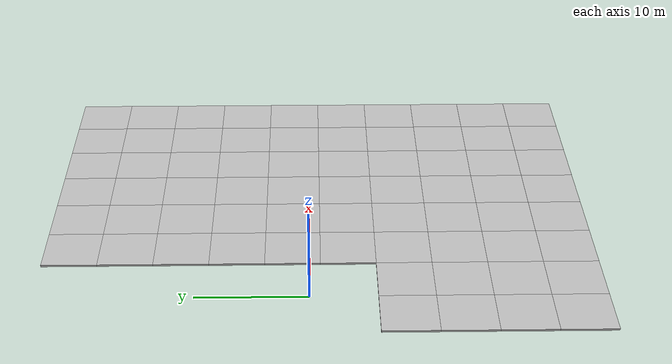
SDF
<sdf version="1.6">
 <world name="default">
  <model name="mud_box_clone_1">
   <static>1</static>
   <link name="link">
    <collision name="collision"><geometry><box><size>8 10 0.2</size></box></geometry></collision>
    <visual name="visual_1">
     <pose>-2 2.5 0 0 -0 0</pose>
     <cast_shadows>0</cast_shadows>
     <geometry><box><size>4 5 0.2</size></box></geometry>
     <material>
      <script>
       <uri>model://mud_box/materials/scripts</uri>
       <uri>model://mud_box/materials/textures</uri>
       <name>vrc/mud</name>
      </script>
     </material>
    </visual>
    <visual name="visual_2">
     <pose>2 2.5 0 0 -0 0</pose>
     <cast_shadows>0</cast_shadows>
     <geometry><box><size>4 5 0.2</size></box></geometry>
     <material>
      <script>
       <uri>model://mud_box/materials/scripts</uri>
       <uri>model://mud_box/materials/textures</uri>
       <name>vrc/mud</name>
      </script>
     </material>
    </visual>
    <visual name="visual_3">
     <pose>2 -2.5 0 0 -0 0</pose>
     <cast_shadows>0</cast_shadows>
     <geometry><box><size>4 5 0.2</size></box></geometry>
     <material>
      <script>
       <uri>model://mud_box/materials/scripts</uri>
       <uri>model://mud_box/materials/textures</uri>
       <name>vrc/mud</name>
      </script>
     </material>
    </visual>
    <visual name="visual_4">
     <pose>-2 -2.5 0 0 -0 0</pose>
     <cast_shadows>0</cast_shadows>
     <geometry><box><size>4 5 0.2</size></box></geometry>
     <material>
      <script>
       <uri>model://mud_box/materials/scripts</uri>
       <uri>model://mud_box/materials/textures</uri>
       <name>vrc/mud</name>
      </script>
     </material>
    </visual>
   </link>
   <pose>8 19 0 0 -0 0</pose>
  </model>
  <model name="mud_box_clone_2">
   <static>1</static>
   <link name="link">
    <collision name="collision"><geometry><box><size>8 10 0.2</size></box></geometry></collision>
    <visual name="visual_1">
     <pose>-2 2.5 0 0 -0 0</pose>
     <cast_shadows>0</cast_shadows>
     <geometry><box><size>4 5 0.2</size></box></geometry>
     <material>
      <script>
       <uri>model://mud_box/materials/scripts</uri>
       <uri>model://mud_box/materials/textures</uri>
       <name>vrc/mud</name>
      </script>
     </material>
    </visual>
    <visual name="visual_2">
     <pose>2 2.5 0 0 -0 0</pose>
     <cast_shadows>0</cast_shadows>
     <geometry><box><size>4 5 0.2</size></box></geometry>
     <material>
      <script>
       <uri>model://mud_box/materials/scripts</uri>
       <uri>model://mud_box/materials/textures</uri>
       <name>vrc/mud</name>
      </script>
     </material>
    </visual>
    <visual name="visual_3">
     <pose>2 -2.5 0 0 -0 0</pose>
     <cast_shadows>0</cast_shadows>
     <geometry><box><size>4 5 0.2</size></box></geometry>
     <material>
      <script>
       <uri>model://mud_box/materials/scripts</uri>
       <uri>model://mud_box/materials/textures</uri>
       <name>vrc/mud</name>
      </script>
     </material>
    </visual>
    <visual name="visual_4">
     <pose>-2 -2.5 0 0 -0 0</pose>
     <cast_shadows>0</cast_shadows>
     <geometry><box><size>4 5 0.2</size></box></geometry>
     <material>
      <script>
       <uri>model://mud_box/materials/scripts</uri>
       <uri>model://mud_box/materials/textures</uri>
       <name>vrc/mud</name>
      </script>
     </material>
    </visual>
   </link>
   <pose>16 19 0 0 -0 0</pose>
  </model>
  <model name="mud_box_clone_3">
   <static>1</static>
   <link name="link">
    <collision name="collision"><geometry><box><size>8 10 0.2</size></box></geometry></collision>
    <visual name="visual_1">
     <pose>-2 2.5 0 0 -0 0</pose>
     <cast_shadows>0</cast_shadows>
     <geometry><box><size>4 5 0.2</size></box></geometry>
     <material>
      <script>
       <uri>model://mud_box/materials/scripts</uri>
       <uri>model://mud_box/materials/textures</uri>
       <name>vrc/mud</name>
      </script>
     </material>
    </visual>
    <visual name="visual_2">
     <pose>2 2.5 0 0 -0 0</pose>
     <cast_shadows>0</cast_shadows>
     <geometry><box><size>4 5 0.2</size></box></geometry>
     <material>
      <script>
       <uri>model://mud_box/materials/scripts</uri>
       <uri>model://mud_box/materials/textures</uri>
       <name>vrc/mud</name>
      </script>
     </material>
    </visual>
    <visual name="visual_3">
     <pose>2 -2.5 0 0 -0 0</pose>
     <cast_shadows>0</cast_shadows>
     <geometry><box><size>4 5 0.2</size></box></geometry>
     <material>
      <script>
       <uri>model://mud_box/materials/scripts</uri>
       <uri>model://mud_box/materials/textures</uri>
       <name>vrc/mud</name>
      </script>
     </material>
    </visual>
    <visual name="visual_4">
     <pose>-2 -2.5 0 0 -0 0</pose>
     <cast_shadows>0</cast_shadows>
     <geometry><box><size>4 5 0.2</size></box></geometry>
     <material>
      <script>
       <uri>model://mud_box/materials/scripts</uri>
       <uri>model://mud_box/materials/textures</uri>
       <name>vrc/mud</name>
      </script>
     </material>
    </visual>
   </link>
   <pose>24 19 0 0 -0 0</pose>
  </model>
  <model name="mud_box_clone_3_clone">
   <static>1</static>
   <link name="link">
    <collision name="collision"><geometry><box><size>8 10 0.2</size></box></geometry></collision>
    <visual name="visual_1">
     <pose>-2 2.5 0 0 -0 0</pose>
     <cast_shadows>0</cast_shadows>
     <geometry><box><size>4 5 0.2</size></box></geometry>
     <material>
      <script>
       <uri>model://mud_box/materials/scripts</uri>
       <uri>model://mud_box/materials/textures</uri>
       <name>vrc/mud</name>
      </script>
     </material>
    </visual>
    <visual name="visual_2">
     <pose>2 2.5 0 0 -0 0</pose>
     <cast_shadows>0</cast_shadows>
     <geometry><box><size>4 5 0.2</size></box></geometry>
     <material>
      <script>
       <uri>model://mud_box/materials/scripts</uri>
       <uri>model://mud_box/materials/textures</uri>
       <name>vrc/mud</name>
      </script>
     </material>
    </visual>
    <visual name="visual_3">
     <pose>2 -2.5 0 0 -0 0</pose>
     <cast_shadows>0</cast_shadows>
     <geometry><box><size>4 5 0.2</size></box></geometry>
     <material>
      <script>
       <uri>model://mud_box/materials/scripts</uri>
       <uri>model://mud_box/materials/textures</uri>
       <name>vrc/mud</name>
      </script>
     </material>
    </visual>
    <visual name="visual_4">
     <pose>-2 -2.5 0 0 -0 0</pose>
     <cast_shadows>0</cast_shadows>
     <geometry><box><size>4 5 0.2</size></box></geometry>
     <material>
      <script>
       <uri>model://mud_box/materials/scripts</uri>
       <uri>model://mud_box/materials/textures</uri>
       <name>vrc/mud</name>
      </script>
     </material>
    </visual>
   </link>
   <pose>24 9 0 0 -0 0</pose>
  </model>
  <model name="mud_box_clone_3_clone_0">
   <static>1</static>
   <link name="link">
    <collision name="collision"><geometry><box><size>8 10 0.2</size></box></geometry></collision>
    <visual name="visual_1">
     <pose>-2 2.5 0 0 -0 0</pose>
     <cast_shadows>0</cast_shadows>
     <geometry><box><size>4 5 0.2</size></box></geometry>
     <material>
      <script>
       <uri>model://mud_box/materials/scripts</uri>
       <uri>model://mud_box/materials/textures</uri>
       <name>vrc/mud</name>
      </script>
     </material>
    </visual>
    <visual name="visual_2">
     <pose>2 2.5 0 0 -0 0</pose>
     <cast_shadows>0</cast_shadows>
     <geometry><box><size>4 5 0.2</size></box></geometry>
     <material>
      <script>
       <uri>model://mud_box/materials/scripts</uri>
       <uri>model://mud_box/materials/textures</uri>
       <name>vrc/mud</name>
      </script>
     </material>
    </visual>
    <visual name="visual_3">
     <pose>2 -2.5 0 0 -0 0</pose>
     <cast_shadows>0</cast_shadows>
     <geometry><box><size>4 5 0.2</size></box></geometry>
     <material>
      <script>
       <uri>model://mud_box/materials/scripts</uri>
       <uri>model://mud_box/materials/textures</uri>
       <name>vrc/mud</name>
      </script>
     </material>
    </visual>
    <visual name="visual_4">
     <pose>-2 -2.5 0 0 -0 0</pose>
     <cast_shadows>0</cast_shadows>
     <geometry><box><size>4 5 0.2</size></box></geometry>
     <material>
      <script>
       <uri>model://mud_box/materials/scripts</uri>
       <uri>model://mud_box/materials/textures</uri>
       <name>vrc/mud</name>
      </script>
     </material>
    </visual>
   </link>
   <pose>16 9 0 0 -0 0</pose>
  </model>
  <model name="mud_box_clone_3_clone_1">
   <static>1</static>
   <link name="link">
    <collision name="collision"><geometry><box><size>8 10 0.2</size></box></geometry></collision>
    <visual name="visual_1">
     <pose>-2 2.5 0 0 -0 0</pose>
     <cast_shadows>0</cast_shadows>
     <geometry><box><size>4 5 0.2</size></box></geometry>
     <material>
      <script>
       <uri>model://mud_box/materials/scripts</uri>
       <uri>model://mud_box/materials/textures</uri>
       <name>vrc/mud</name>
      </script>
     </material>
    </visual>
    <visual name="visual_2">
     <pose>2 2.5 0 0 -0 0</pose>
     <cast_shadows>0</cast_shadows>
     <geometry><box><size>4 5 0.2</size></box></geometry>
     <material>
      <script>
       <uri>model://mud_box/materials/scripts</uri>
       <uri>model://mud_box/materials/textures</uri>
       <name>vrc/mud</name>
      </script>
     </material>
    </visual>
    <visual name="visual_3">
     <pose>2 -2.5 0 0 -0 0</pose>
     <cast_shadows>0</cast_shadows>
     <geometry><box><size>4 5 0.2</size></box></geometry>
     <material>
      <script>
       <uri>model://mud_box/materials/scripts</uri>
       <uri>model://mud_box/materials/textures</uri>
       <name>vrc/mud</name>
      </script>
     </material>
    </visual>
    <visual name="visual_4">
     <pose>-2 -2.5 0 0 -0 0</pose>
     <cast_shadows>0</cast_shadows>
     <geometry><box><size>4 5 0.2</size></box></geometry>
     <material>
      <script>
       <uri>model://mud_box/materials/scripts</uri>
       <uri>model://mud_box/materials/textures</uri>
       <name>vrc/mud</name>
      </script>
     </material>
    </visual>
   </link>
   <pose>8 9 0 0 -0 0</pose>
  </model>
  <model name="mud_box_clone_3_clone_2_clone_2">
   <static>1</static>
   <link name="link">
    <collision name="collision"><geometry><box><size>8 10 0.2</size></box></geometry></collision>
    <visual name="visual_1">
     <pose>-2 2.5 0 0 -0 0</pose>
     <cast_shadows>0</cast_shadows>
     <geometry><box><size>4 5 0.2</size></box></geometry>
     <material>
      <script>
       <uri>model://mud_box/materials/scripts</uri>
       <uri>model://mud_box/materials/textures</uri>
       <name>vrc/mud</name>
      </script>
     </material>
    </visual>
    <visual name="visual_2">
     <pose>2 2.5 0 0 -0 0</pose>
     <cast_shadows>0</cast_shadows>
     <geometry><box><size>4 5 0.2</size></box></geometry>
     <material>
      <script>
       <uri>model://mud_box/materials/scripts</uri>
       <uri>model://mud_box/materials/textures</uri>
       <name>vrc/mud</name>
      </script>
     </material>
    </visual>
    <visual name="visual_3">
     <pose>2 -2.5 0 0 -0 0</pose>
     <cast_shadows>0</cast_shadows>
     <geometry><box><size>4 5 0.2</size></box></geometry>
     <material>
      <script>
       <uri>model://mud_box/materials/scripts</uri>
       <uri>model://mud_box/materials/textures</uri>
       <name>vrc/mud</name>
      </script>
     </material>
    </visual>
    <visual name="visual_4">
     <pose>-2 -2.5 0 0 -0 0</pose>
     <cast_shadows>0</cast_shadows>
     <geometry><box><size>4 5 0.2</size></box></geometry>
     <material>
      <script>
       <uri>model://mud_box/materials/scripts</uri>
       <uri>model://mud_box/materials/textures</uri>
       <name>vrc/mud</name>
      </script>
     </material>
    </visual>
   </link>
   <pose>8 -1 0 0 -0 0</pose>
  </model>
  <model name="mud_box_clone_3_clone_2_clone_4">
   <static>1</static>
   <link name="link">
    <collision name="collision"><geometry><box><size>8 10 0.2</size></box></geometry></collision>
    <visual name="visual_1">
     <pose>-2 2.5 0 0 -0 0</pose>
     <cast_shadows>0</cast_shadows>
     <geometry><box><size>4 5 0.2</size></box></geometry>
     <material>
      <script>
       <uri>model://mud_box/materials/scripts</uri>
       <uri>model://mud_box/materials/textures</uri>
       <name>vrc/mud</name>
      </script>
     </material>
    </visual>
    <visual name="visual_2">
     <pose>2 2.5 0 0 -0 0</pose>
     <cast_shadows>0</cast_shadows>
     <geometry><box><size>4 5 0.2</size></box></geometry>
     <material>
      <script>
       <uri>model://mud_box/materials/scripts</uri>
       <uri>model://mud_box/materials/textures</uri>
       <name>vrc/mud</name>
      </script>
     </material>
    </visual>
    <visual name="visual_3">
     <pose>2 -2.5 0 0 -0 0</pose>
     <cast_shadows>0</cast_shadows>
     <geometry><box><size>4 5 0.2</size></box></geometry>
     <material>
      <script>
       <uri>model://mud_box/materials/scripts</uri>
       <uri>model://mud_box/materials/textures</uri>
       <name>vrc/mud</name>
      </script>
     </material>
    </visual>
    <visual name="visual_4">
     <pose>-2 -2.5 0 0 -0 0</pose>
     <cast_shadows>0</cast_shadows>
     <geometry><box><size>4 5 0.2</size></box></geometry>
     <material>
      <script>
       <uri>model://mud_box/materials/scripts</uri>
       <uri>model://mud_box/materials/textures</uri>
       <name>vrc/mud</name>
      </script>
     </material>
    </visual>
   </link>
   <pose>16 -1 0 0 -0 0</pose>
  </model>
  <model name="mud_box_clone_3_clone_2_clone_5">
   <static>1</static>
   <link name="link">
    <collision name="collision"><geometry><box><size>8 10 0.2</size></box></geometry></collision>
    <visual name="visual_1">
     <pose>-2 2.5 0 0 -0 0</pose>
     <cast_shadows>0</cast_shadows>
     <geometry><box><size>4 5 0.2</size></box></geometry>
     <material>
      <script>
       <uri>model://mud_box/materials/scripts</uri>
       <uri>model://mud_box/materials/textures</uri>
       <name>vrc/mud</name>
      </script>
     </material>
    </visual>
    <visual name="visual_2">
     <pose>2 2.5 0 0 -0 0</pose>
     <cast_shadows>0</cast_shadows>
     <geometry><box><size>4 5 0.2</size></box></geometry>
     <material>
      <script>
       <uri>model://mud_box/materials/scripts</uri>
       <uri>model://mud_box/materials/textures</uri>
       <name>vrc/mud</name>
      </script>
     </material>
    </visual>
    <visual name="visual_3">
     <pose>2 -2.5 0 0 -0 0</pose>
     <cast_shadows>0</cast_shadows>
     <geometry><box><size>4 5 0.2</size></box></geometry>
     <material>
      <script>
       <uri>model://mud_box/materials/scripts</uri>
       <uri>model://mud_box/materials/textures</uri>
       <name>vrc/mud</name>
      </script>
     </material>
    </visual>
    <visual name="visual_4">
     <pose>-2 -2.5 0 0 -0 0</pose>
     <cast_shadows>0</cast_shadows>
     <geometry><box><size>4 5 0.2</size></box></geometry>
     <material>
      <script>
       <uri>model://mud_box/materials/scripts</uri>
       <uri>model://mud_box/materials/textures</uri>
       <name>vrc/mud</name>
      </script>
     </material>
    </visual>
   </link>
   <pose>24 -1 0 0 -0 0</pose>
  </model>
  <model name="mud_box_clone_3_clone_2_clone_clone">
   <static>1</static>
   <link name="link">
    <collision name="collision"><geometry><box><size>8 10 0.2</size></box></geometry></collision>
    <visual name="visual_1">
     <pose>-2 2.5 0 0 -0 0</pose>
     <cast_shadows>0</cast_shadows>
     <geometry><box><size>4 5 0.2</size></box></geometry>
     <material>
      <script>
       <uri>model://mud_box/materials/scripts</uri>
       <uri>model://mud_box/materials/textures</uri>
       <name>vrc/mud</name>
      </script>
     </material>
    </visual>
    <visual name="visual_2">
     <pose>2 2.5 0 0 -0 0</pose>
     <cast_shadows>0</cast_shadows>
     <geometry><box><size>4 5 0.2</size></box></geometry>
     <material>
      <script>
       <uri>model://mud_box/materials/scripts</uri>
       <uri>model://mud_box/materials/textures</uri>
       <name>vrc/mud</name>
      </script>
     </material>
    </visual>
    <visual name="visual_3">
     <pose>2 -2.5 0 0 -0 0</pose>
     <cast_shadows>0</cast_shadows>
     <geometry><box><size>4 5 0.2</size></box></geometry>
     <material>
      <script>
       <uri>model://mud_box/materials/scripts</uri>
       <uri>model://mud_box/materials/textures</uri>
       <name>vrc/mud</name>
      </script>
     </material>
    </visual>
    <visual name="visual_4">
     <pose>-2 -2.5 0 0 -0 0</pose>
     <cast_shadows>0</cast_shadows>
     <geometry><box><size>4 5 0.2</size></box></geometry>
     <material>
      <script>
       <uri>model://mud_box/materials/scripts</uri>
       <uri>model://mud_box/materials/textures</uri>
       <name>vrc/mud</name>
      </script>
     </material>
    </visual>
   </link>
   <pose>0 -11 0 0 -0 0</pose>
  </model>
  <model name="mud_box_clone_3_clone_2_clone_clone_1">
   <static>1</static>
   <link name="link">
    <collision name="collision"><geometry><box><size>8 10 0.2</size></box></geometry></collision>
    <visual name="visual_1">
     <pose>-2 2.5 0 0 -0 0</pose>
     <cast_shadows>0</cast_shadows>
     <geometry><box><size>4 5 0.2</size></box></geometry>
     <material>
      <script>
       <uri>model://mud_box/materials/scripts</uri>
       <uri>model://mud_box/materials/textures</uri>
       <name>vrc/mud</name>
      </script>
     </material>
    </visual>
    <visual name="visual_2">
     <pose>2 2.5 0 0 -0 0</pose>
     <cast_shadows>0</cast_shadows>
     <geometry><box><size>4 5 0.2</size></box></geometry>
     <material>
      <script>
       <uri>model://mud_box/materials/scripts</uri>
       <uri>model://mud_box/materials/textures</uri>
       <name>vrc/mud</name>
      </script>
     </material>
    </visual>
    <visual name="visual_3">
     <pose>2 -2.5 0 0 -0 0</pose>
     <cast_shadows>0</cast_shadows>
     <geometry><box><size>4 5 0.2</size></box></geometry>
     <material>
      <script>
       <uri>model://mud_box/materials/scripts</uri>
       <uri>model://mud_box/materials/textures</uri>
       <name>vrc/mud</name>
      </script>
     </material>
    </visual>
    <visual name="visual_4">
     <pose>-2 -2.5 0 0 -0 0</pose>
     <cast_shadows>0</cast_shadows>
     <geometry><box><size>4 5 0.2</size></box></geometry>
     <material>
      <script>
       <uri>model://mud_box/materials/scripts</uri>
       <uri>model://mud_box/materials/textures</uri>
       <name>vrc/mud</name>
      </script>
     </material>
    </visual>
   </link>
   <pose>0 -21 0 0 -0 0</pose>
  </model>
  <model name="mud_box_clone_3_clone_2_clone_clone_7">
   <static>1</static>
   <link name="link">
    <collision name="collision"><geometry><box><size>8 10 0.2</size></box></geometry></collision>
    <visual name="visual_1">
     <pose>-2 2.5 0 0 -0 0</pose>
     <cast_shadows>0</cast_shadows>
     <geometry><box><size>4 5 0.2</size></box></geometry>
     <material>
      <script>
       <uri>model://mud_box/materials/scripts</uri>
       <uri>model://mud_box/materials/textures</uri>
       <name>vrc/mud</name>
      </script>
     </material>
    </visual>
    <visual name="visual_2">
     <pose>2 2.5 0 0 -0 0</pose>
     <cast_shadows>0</cast_shadows>
     <geometry><box><size>4 5 0.2</size></box></geometry>
     <material>
      <script>
       <uri>model://mud_box/materials/scripts</uri>
       <uri>model://mud_box/materials/textures</uri>
       <name>vrc/mud</name>
      </script>
     </material>
    </visual>
    <visual name="visual_3">
     <pose>2 -2.5 0 0 -0 0</pose>
     <cast_shadows>0</cast_shadows>
     <geometry><box><size>4 5 0.2</size></box></geometry>
     <material>
      <script>
       <uri>model://mud_box/materials/scripts</uri>
       <uri>model://mud_box/materials/textures</uri>
       <name>vrc/mud</name>
      </script>
     </material>
    </visual>
    <visual name="visual_4">
     <pose>-2 -2.5 0 0 -0 0</pose>
     <cast_shadows>0</cast_shadows>
     <geometry><box><size>4 5 0.2</size></box></geometry>
     <material>
      <script>
       <uri>model://mud_box/materials/scripts</uri>
       <uri>model://mud_box/materials/textures</uri>
       <name>vrc/mud</name>
      </script>
     </material>
    </visual>
   </link>
   <pose>8 -11 0 0 -0 0</pose>
  </model>
  <model name="mud_box_clone_3_clone_2_clone_clone_8">
   <static>1</static>
   <link name="link">
    <collision name="collision"><geometry><box><size>8 10 0.2</size></box></geometry></collision>
    <visual name="visual_1">
     <pose>-2 2.5 0 0 -0 0</pose>
     <cast_shadows>0</cast_shadows>
     <geometry><box><size>4 5 0.2</size></box></geometry>
     <material>
      <script>
       <uri>model://mud_box/materials/scripts</uri>
       <uri>model://mud_box/materials/textures</uri>
       <name>vrc/mud</name>
      </script>
     </material>
    </visual>
    <visual name="visual_2">
     <pose>2 2.5 0 0 -0 0</pose>
     <cast_shadows>0</cast_shadows>
     <geometry><box><size>4 5 0.2</size></box></geometry>
     <material>
      <script>
       <uri>model://mud_box/materials/scripts</uri>
       <uri>model://mud_box/materials/textures</uri>
       <name>vrc/mud</name>
      </script>
     </material>
    </visual>
    <visual name="visual_3">
     <pose>2 -2.5 0 0 -0 0</pose>
     <cast_shadows>0</cast_shadows>
     <geometry><box><size>4 5 0.2</size></box></geometry>
     <material>
      <script>
       <uri>model://mud_box/materials/scripts</uri>
       <uri>model://mud_box/materials/textures</uri>
       <name>vrc/mud</name>
      </script>
     </material>
    </visual>
    <visual name="visual_4">
     <pose>-2 -2.5 0 0 -0 0</pose>
     <cast_shadows>0</cast_shadows>
     <geometry><box><size>4 5 0.2</size></box></geometry>
     <material>
      <script>
       <uri>model://mud_box/materials/scripts</uri>
       <uri>model://mud_box/materials/textures</uri>
       <name>vrc/mud</name>
      </script>
     </material>
    </visual>
   </link>
   <pose>16 -11 0 0 -0 0</pose>
  </model>
  <model name="mud_box_clone_3_clone_2_clone_clone_9">
   <static>1</static>
   <link name="link">
    <collision name="collision"><geometry><box><size>8 10 0.2</size></box></geometry></collision>
    <visual name="visual_1">
     <pose>-2 2.5 0 0 -0 0</pose>
     <cast_shadows>0</cast_shadows>
     <geometry><box><size>4 5 0.2</size></box></geometry>
     <material>
      <script>
       <uri>model://mud_box/materials/scripts</uri>
       <uri>model://mud_box/materials/textures</uri>
       <name>vrc/mud</name>
      </script>
     </material>
    </visual>
    <visual name="visual_2">
     <pose>2 2.5 0 0 -0 0</pose>
     <cast_shadows>0</cast_shadows>
     <geometry><box><size>4 5 0.2</size></box></geometry>
     <material>
      <script>
       <uri>model://mud_box/materials/scripts</uri>
       <uri>model://mud_box/materials/textures</uri>
       <name>vrc/mud</name>
      </script>
     </material>
    </visual>
    <visual name="visual_3">
     <pose>2 -2.5 0 0 -0 0</pose>
     <cast_shadows>0</cast_shadows>
     <geometry><box><size>4 5 0.2</size></box></geometry>
     <material>
      <script>
       <uri>model://mud_box/materials/scripts</uri>
       <uri>model://mud_box/materials/textures</uri>
       <name>vrc/mud</name>
      </script>
     </material>
    </visual>
    <visual name="visual_4">
     <pose>-2 -2.5 0 0 -0 0</pose>
     <cast_shadows>0</cast_shadows>
     <geometry><box><size>4 5 0.2</size></box></geometry>
     <material>
      <script>
       <uri>model://mud_box/materials/scripts</uri>
       <uri>model://mud_box/materials/textures</uri>
       <name>vrc/mud</name>
      </script>
     </material>
    </visual>
   </link>
   <pose>24 -11 0 0 -0 0</pose>
  </model>
  <model name="mud_box_clone_3_clone_2_clone_clone_10">
   <static>1</static>
   <link name="link">
    <collision name="collision"><geometry><box><size>8 10 0.2</size></box></geometry></collision>
    <visual name="visual_1">
     <pose>-2 2.5 0 0 -0 0</pose>
     <cast_shadows>0</cast_shadows>
     <geometry><box><size>4 5 0.2</size></box></geometry>
     <material>
      <script>
       <uri>model://mud_box/materials/scripts</uri>
       <uri>model://mud_box/materials/textures</uri>
       <name>vrc/mud</name>
      </script>
     </material>
    </visual>
    <visual name="visual_2">
     <pose>2 2.5 0 0 -0 0</pose>
     <cast_shadows>0</cast_shadows>
     <geometry><box><size>4 5 0.2</size></box></geometry>
     <material>
      <script>
       <uri>model://mud_box/materials/scripts</uri>
       <uri>model://mud_box/materials/textures</uri>
       <name>vrc/mud</name>
      </script>
     </material>
    </visual>
    <visual name="visual_3">
     <pose>2 -2.5 0 0 -0 0</pose>
     <cast_shadows>0</cast_shadows>
     <geometry><box><size>4 5 0.2</size></box></geometry>
     <material>
      <script>
       <uri>model://mud_box/materials/scripts</uri>
       <uri>model://mud_box/materials/textures</uri>
       <name>vrc/mud</name>
      </script>
     </material>
    </visual>
    <visual name="visual_4">
     <pose>-2 -2.5 0 0 -0 0</pose>
     <cast_shadows>0</cast_shadows>
     <geometry><box><size>4 5 0.2</size></box></geometry>
     <material>
      <script>
       <uri>model://mud_box/materials/scripts</uri>
       <uri>model://mud_box/materials/textures</uri>
       <name>vrc/mud</name>
      </script>
     </material>
    </visual>
   </link>
   <pose>24 -21 0 0 -0 0</pose>
  </model>
  <model name="mud_box_clone_3_clone_2_clone_clone_11">
   <static>1</static>
   <link name="link">
    <collision name="collision"><geometry><box><size>8 10 0.2</size></box></geometry></collision>
    <visual name="visual_1">
     <pose>-2 2.5 0 0 -0 0</pose>
     <cast_shadows>0</cast_shadows>
     <geometry><box><size>4 5 0.2</size></box></geometry>
     <material>
      <script>
       <uri>model://mud_box/materials/scripts</uri>
       <uri>model://mud_box/materials/textures</uri>
       <name>vrc/mud</name>
      </script>
     </material>
    </visual>
    <visual name="visual_2">
     <pose>2 2.5 0 0 -0 0</pose>
     <cast_shadows>0</cast_shadows>
     <geometry><box><size>4 5 0.2</size></box></geometry>
     <material>
      <script>
       <uri>model://mud_box/materials/scripts</uri>
       <uri>model://mud_box/materials/textures</uri>
       <name>vrc/mud</name>
      </script>
     </material>
    </visual>
    <visual name="visual_3">
     <pose>2 -2.5 0 0 -0 0</pose>
     <cast_shadows>0</cast_shadows>
     <geometry><box><size>4 5 0.2</size></box></geometry>
     <material>
      <script>
       <uri>model://mud_box/materials/scripts</uri>
       <uri>model://mud_box/materials/textures</uri>
       <name>vrc/mud</name>
      </script>
     </material>
    </visual>
    <visual name="visual_4">
     <pose>-2 -2.5 0 0 -0 0</pose>
     <cast_shadows>0</cast_shadows>
     <geometry><box><size>4 5 0.2</size></box></geometry>
     <material>
      <script>
       <uri>model://mud_box/materials/scripts</uri>
       <uri>model://mud_box/materials/textures</uri>
       <name>vrc/mud</name>
      </script>
     </material>
    </visual>
   </link>
   <pose>16 -21 0 0 -0 0</pose>
  </model>
  <model name="mud_box_clone_3_clone_2_clone_clone_12">
   <static>1</static>
   <link name="link">
    <collision name="collision"><geometry><box><size>8 10 0.2</size></box></geometry></collision>
    <visual name="visual_1">
     <pose>-2 2.5 0 0 -0 0</pose>
     <cast_shadows>0</cast_shadows>
     <geometry><box><size>4 5 0.2</size></box></geometry>
     <material>
      <script>
       <uri>model://mud_box/materials/scripts</uri>
       <uri>model://mud_box/materials/textures</uri>
       <name>vrc/mud</name>
      </script>
     </material>
    </visual>
    <visual name="visual_2">
     <pose>2 2.5 0 0 -0 0</pose>
     <cast_shadows>0</cast_shadows>
     <geometry><box><size>4 5 0.2</size></box></geometry>
     <material>
      <script>
       <uri>model://mud_box/materials/scripts</uri>
       <uri>model://mud_box/materials/textures</uri>
       <name>vrc/mud</name>
      </script>
     </material>
    </visual>
    <visual name="visual_3">
     <pose>2 -2.5 0 0 -0 0</pose>
     <cast_shadows>0</cast_shadows>
     <geometry><box><size>4 5 0.2</size></box></geometry>
     <material>
      <script>
       <uri>model://mud_box/materials/scripts</uri>
       <uri>model://mud_box/materials/textures</uri>
       <name>vrc/mud</name>
      </script>
     </material>
    </visual>
    <visual name="visual_4">
     <pose>-2 -2.5 0 0 -0 0</pose>
     <cast_shadows>0</cast_shadows>
     <geometry><box><size>4 5 0.2</size></box></geometry>
     <material>
      <script>
       <uri>model://mud_box/materials/scripts</uri>
       <uri>model://mud_box/materials/textures</uri>
       <name>vrc/mud</name>
      </script>
     </material>
    </visual>
   </link>
   <pose>8 -21 0 0 -0 0</pose>
  </model>
 </world>
</sdf>
